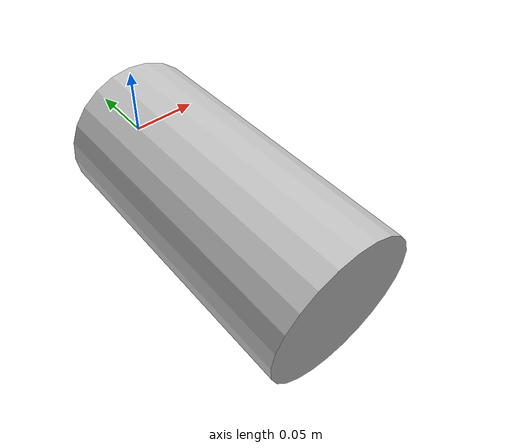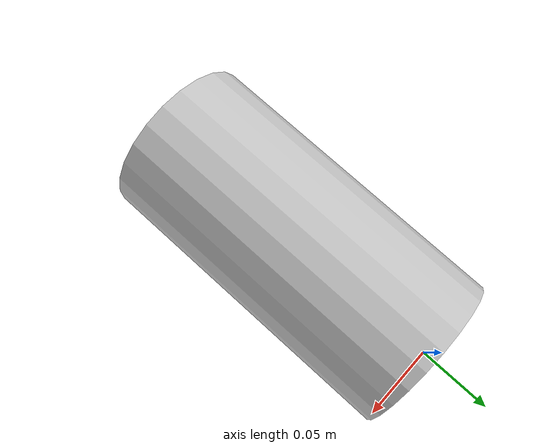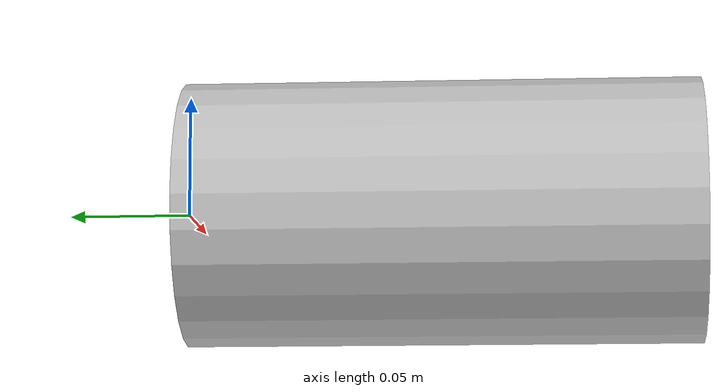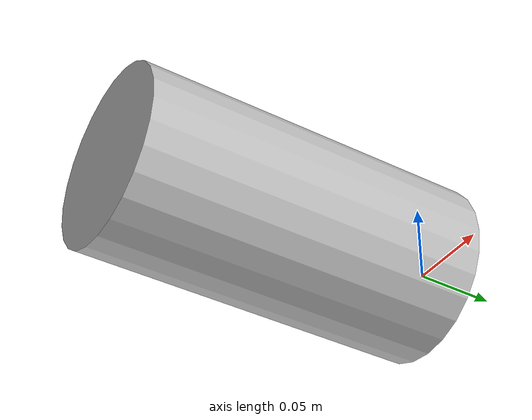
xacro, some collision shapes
<?xml version="1.0" encoding="utf-8"?>
<robot xmlns:xacro="http://ros.org/wiki/xacro" name="gripper">

  <xacro:property name="pi" value="3.141592654" />
  <xacro:property name="upper_joint_limit" value="${pi/4}" />
  <xacro:property name="lower_joint_limit" value="${-pi/4}" />

  <link
    name="base_gripper">
    <inertial>
      <origin
        xyz="1.10509452800074E-06 0.00208243198225818 0.0400984076446437"
        rpy="0 0 0" />
      <mass
        value="0.185199260372416" />
      <inertia
        ixx="9.76222430788153E-05"
        ixy="-7.8112390093605E-09"
        ixz="6.20208431775755E-12"
        iyy="8.20988447730316E-05"
        iyz="-3.40692325998543E-06"
        izz="0.000149625833719171" />
    </inertial>
    <visual>
      <origin
        xyz="0 0 0"
        rpy="0 0 0" />
      <geometry>
        <mesh
          filename="package://motoman_description/meshes/grippers/six_fingered_gripper/base_gripper.STL" />
      </geometry>
      <material
        name="">
        <color
          rgba="0.752941176470588 0.752941176470588 0.752941176470588 1" />
      </material>
    </visual>
    <collision>
			<origin rpy="${pi/2} 0 0" xyz="${0} ${-0.10625} ${0}" />
			<geometry>
        <cylinder radius="0.055" length="0.2125"/>
			</geometry>
		</collision>
  </link>
  <link
    name="gripper_finger_1">
    <inertial>
      <origin
        xyz="-0.0012619 0.038986 -2.3657E-12"
        rpy="0 0 0" />
      <mass
        value="0.006157" />
      <inertia
        ixx="2.4192E-06"
        ixy="2.4793E-07"
        ixz="2.8628E-15"
        iyy="1.6776E-07"
        iyz="1.1444E-15"
        izz="2.5199E-06" />
    </inertial>
    <visual>
      <origin
        xyz="0 0 0"
        rpy="0 0 0" />
      <geometry>
        <mesh
          filename="package://motoman_description/meshes/grippers/six_fingered_gripper/gripper_finger_1.STL" />
      </geometry>
      <material
        name="">
        <color
          rgba="0.75294 0.75294 0.75294 1" />
      </material>
    </visual>
  </link>
  <joint
    name="finger_joint_1"
    type="fixed">
    <origin
      xyz="0.0175 -0.08 0.030311"
      rpy="0 1.0472 -3.1416" />
    <parent
      link="base_gripper" />
    <child
      link="gripper_finger_1" />
    <axis
      xyz="0 0 1" />
  </joint>
  <link
    name="gripper_finger_2">
    <inertial>
      <origin
        xyz="-0.0012619 0.038986 -2.3657E-12"
        rpy="0 0 0" />
      <mass
        value="0.006157" />
      <inertia
        ixx="2.4192E-06"
        ixy="2.4793E-07"
        ixz="2.8628E-15"
        iyy="1.6776E-07"
        iyz="1.1444E-15"
        izz="2.5199E-06" />
    </inertial>
    <visual>
      <origin
        xyz="0 0 0"
        rpy="0 0 0" />
      <geometry>
        <mesh
          filename="package://motoman_description/meshes/grippers/six_fingered_gripper/gripper_finger_2.STL" />
      </geometry>
      <material
        name="">
        <color
          rgba="0.75294 0.75294 0.75294 1" />
      </material>
    </visual>
  </link>
  <joint
    name="finger_joint_2"
    type="fixed">
    <origin
      xyz="0.035 -0.08 0"
      rpy="0 0 3.1416" />
    <parent
      link="base_gripper" />
    <child
      link="gripper_finger_2" />
    <axis
      xyz="0 0 1" />
  </joint>
  <link
    name="gripper_finger_3">
    <inertial>
      <origin
        xyz="-0.0012619 0.038986 -2.3657E-12"
        rpy="0 0 0" />
      <mass
        value="0.006157" />
      <inertia
        ixx="2.4192E-06"
        ixy="2.4793E-07"
        ixz="2.8628E-15"
        iyy="1.6776E-07"
        iyz="1.1444E-15"
        izz="2.5199E-06" />
    </inertial>
    <visual>
      <origin
        xyz="0 0 0"
        rpy="0 0 0" />
      <geometry>
        <mesh
          filename="package://motoman_description/meshes/grippers/six_fingered_gripper/gripper_finger_3.STL" />
      </geometry>
      <material
        name="">
        <color
          rgba="0.75294 0.75294 0.75294 1" />
      </material>
    </visual>
  </link>
  <joint
    name="finger_joint_3"
    type="fixed">
    <origin
      xyz="0.0175 -0.08 -0.030311"
      rpy="0 -1.0472 3.1416" />
    <parent
      link="base_gripper" />
    <child
      link="gripper_finger_3" />
    <axis
      xyz="0 0 1" />
  </joint>
  <link
    name="gripper_finger_4">
    <inertial>
      <origin
        xyz="-0.00126191047827026 0.0389862430346049 -2.36565281253043E-12"
        rpy="0 0 0" />
      <mass
        value="0.00615698496047359" />
      <inertia
        ixx="2.41915556010585E-06"
        ixy="2.47931048420401E-07"
        ixz="2.86284769490924E-15"
        iyy="1.67755649991034E-07"
        iyz="1.14444598796065E-15"
        izz="2.51994852952969E-06" />
    </inertial>
    <visual>
      <origin
        xyz="0 0 0"
        rpy="0 0 0" />
      <geometry>
        <mesh
          filename="package://motoman_description/meshes/grippers/six_fingered_gripper/gripper_finger_4.STL" />
      </geometry>
      <material
        name="">
        <color
          rgba="0.752941176470588 0.752941176470588 0.752941176470588 1" />
      </material>
    </visual>
  </link>
  <joint
    name="finger_joint_4"
    type="fixed">
    <origin
      xyz="-0.0175 -0.08 -0.030311"
      rpy="3.1416 -1.0472 0" />
    <parent
      link="base_gripper" />
    <child
      link="gripper_finger_4" />
    <axis
      xyz="0 0 1" />
  </joint>
  <link
    name="gripper_finger_5">
    <inertial>
      <origin
        xyz="-0.0012619 0.038986 -2.3657E-12"
        rpy="0 0 0" />
      <mass
        value="0.006157" />
      <inertia
        ixx="2.4192E-06"
        ixy="2.4793E-07"
        ixz="2.8628E-15"
        iyy="1.6776E-07"
        iyz="1.1444E-15"
        izz="2.5199E-06" />
    </inertial>
    <visual>
      <origin
        xyz="0 0 0"
        rpy="0 0 0" />
      <geometry>
        <mesh
          filename="package://motoman_description/meshes/grippers/six_fingered_gripper/gripper_finger_5.STL" />
      </geometry>
      <material
        name="">
        <color
          rgba="0.75294 0.75294 0.75294 1" />
      </material>
    </visual>
  </link>
  <joint
    name="finger_joint_5"
    type="fixed">
    <origin
      xyz="-0.035 -0.08 0"
      rpy="3.1416 0 0" />
    <parent
      link="base_gripper" />
    <child
      link="gripper_finger_5" />
    <axis
      xyz="0 0 1" />
  </joint>
  <link
    name="gripper_finger_6">
    <inertial>
      <origin
        xyz="-0.0012619 0.038986 -2.3657E-12"
        rpy="0 0 0" />
      <mass
        value="0.006157" />
      <inertia
        ixx="2.4192E-06"
        ixy="2.4793E-07"
        ixz="2.8628E-15"
        iyy="1.6776E-07"
        iyz="1.1444E-15"
        izz="2.5199E-06" />
    </inertial>
    <visual>
      <origin
        xyz="0 0 0"
        rpy="0 0 0" />
      <geometry>
        <mesh
          filename="package://motoman_description/meshes/grippers/six_fingered_gripper/gripper_finger_6.STL" />
      </geometry>
      <material
        name="">
        <color
          rgba="0.75294 0.75294 0.75294 1" />
      </material>
    </visual>
  </link>
  <joint
    name="finger_joint_6"
    type="fixed">
    <origin
      xyz="-0.0175 -0.08 0.030311"
      rpy="3.1416 1.0472 0" />
    <parent
      link="base_gripper" />
    <child
      link="gripper_finger_6" />
    <axis
      xyz="0 0 1" />
  </joint>
</robot>
